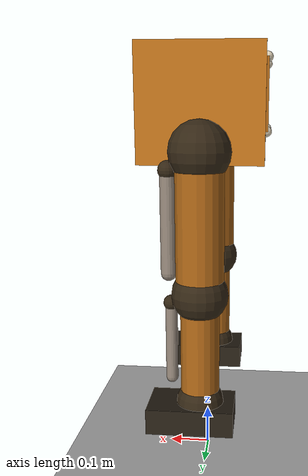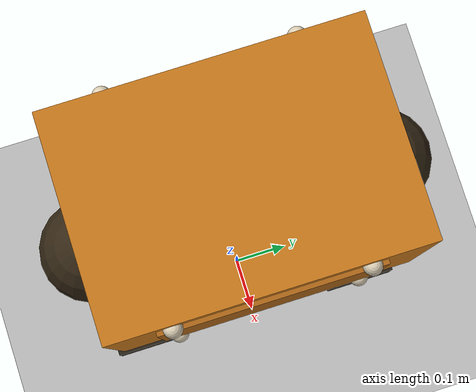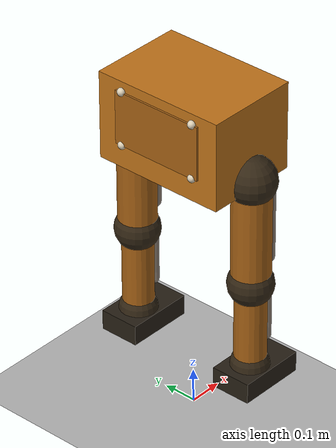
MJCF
<mujoco model="louis">

  <!-- physics -->
  <option timestep="0.002" gravity="0 0 -9.81"/>

  <visual>
    <headlight ambient="0.4 0.4 0.4"/>
  </visual>

  <default>
    <default class="louis">
      <joint axis="0 0 1"/>
      <default class="hip_rot">
        <joint armature="0.005" frictionloss="0.3" damping="2" range="-0.6 0.6"/>
      </default>
      <default class="hip_abd">
        <joint armature="0.005" frictionloss="0.3" damping="2" range="-0.4 0.4"/>
      </default>
      <default class="hip_flex">
        <joint armature="0.007" frictionloss="0.3" damping="2" range="-1.7 0.5"/>
      </default>
      <default class="knee">
        <joint armature="0.005" frictionloss="1.0" damping="3" range="0 2.0"/>
      </default>
      <default class="ankle_flex">
        <joint armature="0.005" frictionloss="1.0" damping="2" range="-0.5 0.7"/>
      </default>
      <default class="ankle_rot">
        <joint armature="0.0005" frictionloss="0.1" damping="0.5" range="-0.5 0.5"/>
      </default>
      <default class="visual">
        <geom contype="0" conaffinity="0" density="0"/>
      </default>
    </default>
  </default>

  <asset>
    <texture type="skybox" builtin="gradient"
             rgb1="0.3 0.5 0.7" rgb2="0 0 0" width="512" height="512"/>
    <texture name="ground" type="2d" builtin="checker"
             rgb1="0.8 0.8 0.8" rgb2="0.6 0.6 0.6"
             width="512" height="512"/>
    <material name="ground"    texture="ground" texrepeat="10 10"/>
    <material name="body"      rgba="0.75 0.45 0.10 1"/>
    <material name="joint"     rgba="0.20 0.15 0.08 1"/>
    <material name="leg"       rgba="0.65 0.38 0.08 1"/>
    <material name="foot"      rgba="0.15 0.12 0.08 1"/>
    <material name="hydraulic" rgba="0.55 0.50 0.45 1"/>
    <material name="rivet"     rgba="0.85 0.80 0.70 1"/>
  </asset>

  <worldbody>

    <geom name="floor" type="plane" size="50 50 0.1"
          material="ground" condim="3" friction="1.0 0.005 0.0001"/>
    <light name="sun" pos="0 0 10" dir="0 0 -1"
           diffuse="0.8 0.8 0.8" specular="0.3 0.3 0.3"/>

    <body name="torso" childclass="louis" pos="0 0 0.90">
      <freejoint/>

      <geom name="torso" type="box" size="0.14 0.20 0.13" material="body" density="1000"/>

      <!-- torso details -->
      <geom class="visual" type="box" size="0.005 0.14 0.08" pos=" 0.141 0.0 0.02" material="leg"/>
      <geom class="visual" type="box" size="0.005 0.14 0.08" pos="-0.141 0.0 0.02" material="leg"/>
      <geom class="visual" type="sphere" size="0.012" pos=" 0.142  0.12  0.10" material="rivet"/>
      <geom class="visual" type="sphere" size="0.012" pos=" 0.142 -0.12  0.10" material="rivet"/>
      <geom class="visual" type="sphere" size="0.012" pos="-0.142  0.12  0.10" material="rivet"/>
      <geom class="visual" type="sphere" size="0.012" pos="-0.142 -0.12  0.10" material="rivet"/>
      <geom class="visual" type="sphere" size="0.012" pos=" 0.142  0.12 -0.06" material="rivet"/>
      <geom class="visual" type="sphere" size="0.012" pos=" 0.142 -0.12 -0.06" material="rivet"/>
      <geom class="visual" type="sphere" size="0.012" pos="-0.142  0.12 -0.06" material="rivet"/>
      <geom class="visual" type="sphere" size="0.012" pos="-0.142 -0.12 -0.06" material="rivet"/>

      <!-- ===== LEFT LEG ===== -->
      <body name="LL_hip_rot" pos="0 0.20 -0.10">
        <joint name="LL_HR" class="hip_rot" axis="0 0 1"/>
        <geom type="sphere" size="0.07" material="joint"/>

        <body name="LL_hip_abd" pos="0 0 0">
          <inertial pos="0 0 0" mass="0.05" diaginertia="0.0001 0.0001 0.0001"/>
          <joint name="LL_HAA" class="hip_abd" axis="0 1 0"/>

          <body name="LL_hip_flex" pos="0 0 -0.02">
            <joint name="LL_HF" class="hip_flex" axis="1 0 0"/>

            <geom name="left_thigh" type="capsule" size="0.055"
                  fromto="0 0 0 0 0 -0.30" material="leg"/>
            <geom class="visual" type="capsule" size="0.018"
                  fromto="0.07 0 -0.02 0.07 0 -0.25" material="hydraulic"/>
            <geom class="visual" type="sphere" size="0.022"
                  pos="0.07 0 -0.02" material="joint"/>
            <geom type="sphere" size="0.065" pos="0 0 -0.30" material="joint"/>

            <body name="LL_knee" pos="0 0 -0.30">
              <joint name="LL_KFE" class="knee" axis="0 -1 0"/>

              <geom name="left_shin" type="capsule" size="0.045"
                    fromto="0 0 0 0 0 -0.26" material="leg"/>
              <geom class="visual" type="capsule" size="0.014"
                    fromto="0.065 0 -0.02 0.065 0 -0.20" material="hydraulic"/>
              <geom class="visual" type="sphere" size="0.018"
                    pos="0.065 0 -0.02" material="joint"/>
              <geom type="sphere" size="0.055" pos="0 0 -0.26" material="joint"/>

              <body name="LL_ankle_flex" pos="0 0 -0.26">
                <inertial pos="0 0 0" mass="0.05" diaginertia="0.0001 0.0001 0.0001"/>
                <joint name="LL_AFE" class="ankle_flex" axis="1 0 0"/>

                <body name="LL_ankle_rot" pos="0 0 0">
                  <joint name="LL_FAA" class="ankle_rot" axis="0 1 0"/>
                  <geom name="left_foot" type="box"
                        size="0.10 0.06 0.03" pos="0.02 0 -0.03"
                        material="foot" friction="1.5 0.005 0.0001"/>
                  <geom class="visual" type="sphere" size="0.009" pos=" 0.08  0.05 -0.01" material="rivet"/>
                  <geom class="visual" type="sphere" size="0.009" pos=" 0.08 -0.05 -0.01" material="rivet"/>
                  <geom class="visual" type="sphere" size="0.009" pos="-0.05  0.05 -0.01" material="rivet"/>
                  <geom class="visual" type="sphere" size="0.009" pos="-0.05 -0.05 -0.01" material="rivet"/>
                </body>
              </body>
            </body>
          </body>
        </body>
      </body>

      <!-- ===== RIGHT LEG ===== -->
      <body name="LR_hip_rot" pos="0 -0.20 -0.10">
        <joint name="LR_HR" class="hip_rot" axis="0 0 1"/>
        <geom type="sphere" size="0.07" material="joint"/>

        <body name="LR_hip_abd" pos="0 0 0">
          <inertial pos="0 0 0" mass="0.05" diaginertia="0.0001 0.0001 0.0001"/>
          <joint name="LR_HAA" class="hip_abd" axis="0 1 0"/>

          <body name="LR_hip_flex" pos="0 0 -0.02">
            <joint name="LR_HF" class="hip_flex" axis="1 0 0"/>

            <geom name="right_thigh" type="capsule" size="0.055"
                  fromto="0 0 0 0 0 -0.30" material="leg"/>
            <geom class="visual" type="capsule" size="0.018"
                  fromto="0.07 0 -0.02 0.07 0 -0.25" material="hydraulic"/>
            <geom class="visual" type="sphere" size="0.022"
                  pos="0.07 0 -0.02" material="joint"/>
            <geom type="sphere" size="0.065" pos="0 0 -0.30" material="joint"/>

            <body name="LR_knee" pos="0 0 -0.30">
              <joint name="LR_KFE" class="knee" axis="0 1 0"/>

              <geom name="right_shin" type="capsule" size="0.045"
                    fromto="0 0 0 0 0 -0.26" material="leg"/>
              <geom class="visual" type="capsule" size="0.014"
                    fromto="0.065 0 -0.02 0.065 0 -0.20" material="hydraulic"/>
              <geom class="visual" type="sphere" size="0.018"
                    pos="0.065 0 -0.02" material="joint"/>
              <geom type="sphere" size="0.055" pos="0 0 -0.26" material="joint"/>

              <body name="LR_ankle_flex" pos="0 0 -0.26">
                <inertial pos="0 0 0" mass="0.05" diaginertia="0.0001 0.0001 0.0001"/>
                <joint name="LR_AFE" class="ankle_flex" axis="1 0 0"/>

                <body name="LR_ankle_rot" pos="0 0 0">
                  <joint name="LR_FAA" class="ankle_rot" axis="0 1 0"/>
                  <geom name="right_foot" type="box"
                        size="0.10 0.06 0.03" pos="0.02 0 -0.03"
                        material="foot" friction="1.5 0.005 0.0001"/>
                  <geom class="visual" type="sphere" size="0.009" pos=" 0.08  0.05 -0.01" material="rivet"/>
                  <geom class="visual" type="sphere" size="0.009" pos=" 0.08 -0.05 -0.01" material="rivet"/>
                  <geom class="visual" type="sphere" size="0.009" pos="-0.05  0.05 -0.01" material="rivet"/>
                  <geom class="visual" type="sphere" size="0.009" pos="-0.05 -0.05 -0.01" material="rivet"/>
                </body>
              </body>
            </body>
          </body>
        </body>
      </body>

    </body>
  </worldbody>

  <actuator>
    <position name="LL_HR"  joint="LL_HR"  kp="120" kv="6"  ctrlrange="-0.6 0.6"/>
    <position name="LL_HAA" joint="LL_HAA" kp="120" kv="6"  ctrlrange="-0.4 0.4"/>
    <position name="LL_HF"  joint="LL_HF"  kp="200" kv="10" ctrlrange="-1.7 0.5"/>
    <position name="LL_KFE" joint="LL_KFE" kp="200" kv="10" ctrlrange="0 2.0"/>
    <position name="LL_AFE" joint="LL_AFE" kp="80"  kv="4"  ctrlrange="-0.5 0.7"/>
    <position name="LL_FAA" joint="LL_FAA" kp="40"  kv="2"  ctrlrange="-0.5 0.5"/>

    <position name="LR_HR"  joint="LR_HR"  kp="120" kv="6"  ctrlrange="-0.6 0.6"/>
    <position name="LR_HAA" joint="LR_HAA" kp="120" kv="6"  ctrlrange="-0.4 0.4"/>
    <position name="LR_HF"  joint="LR_HF"  kp="200" kv="10" ctrlrange="-1.7 0.5"/>
    <position name="LR_KFE" joint="LR_KFE" kp="200" kv="10" ctrlrange="0 2.0"/>
    <position name="LR_AFE" joint="LR_AFE" kp="80"  kv="4"  ctrlrange="-0.5 0.7"/>
    <position name="LR_FAA" joint="LR_FAA" kp="40"  kv="2"  ctrlrange="-0.5 0.5"/>
  </actuator>

  <keyframe>
    <key name="stand"
      qpos="0 0 0.90 1 0 0 0
            0 0 0 0 0 0
            0 0 0 0 0 0"/>
  </keyframe>

</mujoco>
